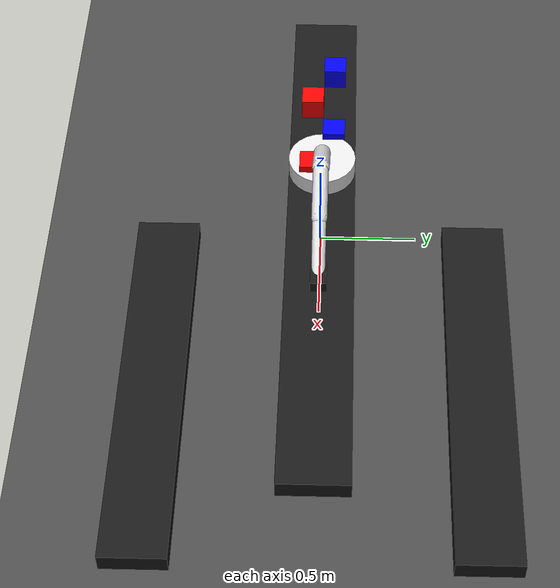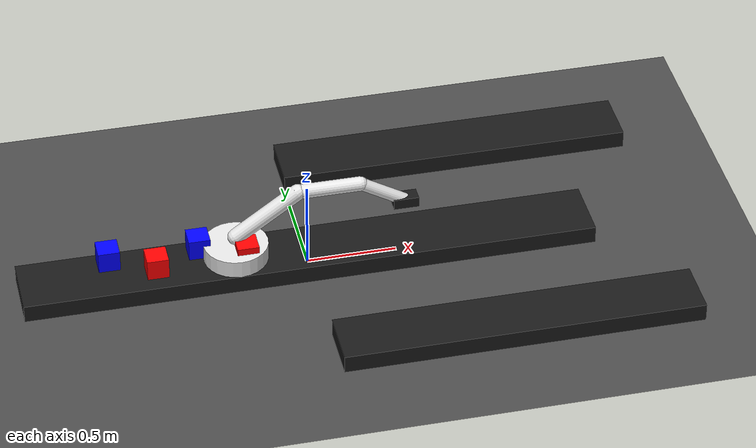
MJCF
<mujoco model="sorting_cell">
<compiler angle="radian"/>
<option gravity="0 0 -9.81" timestep="0.002"/>
<asset>
<material name="red" rgba="1 0 0 1"/>
<material name="blue" rgba="0 0 1 1"/>
<material name="black" rgba="0.1 0.1 0.1 1"/>
<material name="white" rgba="0.9 0.9 0.9 1"/>
</asset>
<worldbody>
<light pos="0 0 5"/>
<geom type="plane" size="5 5 0.1" rgba="0.3 0.3 0.3 1"/>
<body name="conveyor_main" pos="0 0 0.05">
<geom type="box" size="1.6 0.18 0.05" material="black"/>
</body>
<body name="conveyor_blue" pos="1.0 0.8 0.05">
<geom type="box" size="1.0 0.16 0.05" material="black"/>
</body>
<body name="conveyor_red" pos="1.0 -0.8 0.05">
<geom type="box" size="1.0 0.16 0.05" material="black"/>
</body>
<body name="robot_base" pos="-0.4 0 0.12">
<geom type="cylinder" size="0.18 0.08" material="white"/>
<body name="link1" pos="0 0 0.12">
<joint name="j1" type="hinge" axis="0 0 1" range="-3.14 3.14"/>
<geom type="capsule" fromto="0 0 0 0.35 0 0.25" size="0.045" material="white"/>
<body name="link2" pos="0.35 0 0.25">
<joint name="j2" type="hinge" axis="0 1 0" range="-1.57 1.57"/>
<geom type="capsule" fromto="0 0 0 0.35 0 0" size="0.04" material="white"/>
<body name="link3" pos="0.35 0 0">
<joint name="j3" type="hinge" axis="0 1 0" range="-1.75 1.75"/>
<geom type="capsule" fromto="0 0 0 0.25 0 -0.15" size="0.035" material="white"/>
<body name="gripper" pos="0.25 0 -0.15">
<geom type="box" size="0.07 0.04 0.03" material="black"/>
</body>
</body>
</body>
</body>
</body>
<body name="cube_blue_1" pos="-1.1 0.06 0.18">
<freejoint/>
<geom type="box" size="0.06 0.06 0.06" material="blue" mass="0.1"/>
</body>
<body name="cube_red_1" pos="-0.85 -0.06 0.18">
<freejoint/>
<geom type="box" size="0.06 0.06 0.06" material="red" mass="0.1"/>
</body>
<body name="cube_blue_2" pos="-0.6 0.06 0.18">
<freejoint/>
<geom type="box" size="0.06 0.06 0.06" material="blue" mass="0.1"/>
</body>
<body name="cube_red_2" pos="-0.35 -0.06 0.18">
<freejoint/>
<geom type="box" size="0.06 0.06 0.06" material="red" mass="0.1"/>
</body>
</worldbody>
<actuator>
<position name="act_j1" joint="j1" kp="80"/>
<position name="act_j2" joint="j2" kp="80"/>
<position name="act_j3" joint="j3" kp="80"/>
</actuator>
</mujoco>
